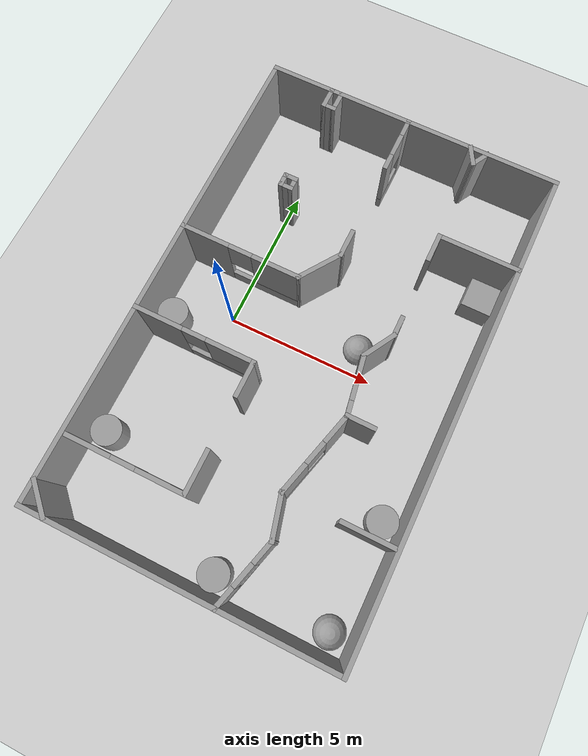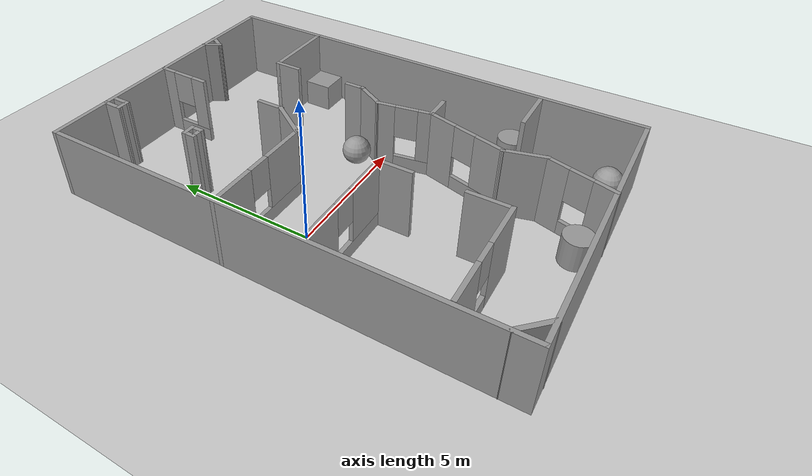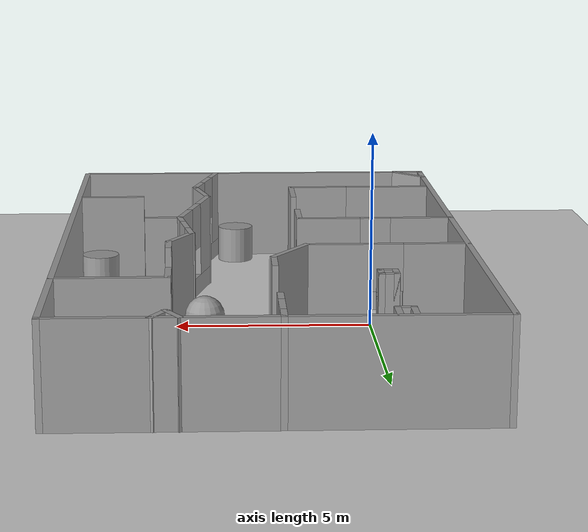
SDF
<sdf version="1.7">
 <world name="default">
  <light name="sun" type="directional">
   <pose>0 0 10 0 -0 0</pose>
   <diffuse>0.8 0.8 0.8 1</diffuse>
   <specular>0.2 0.2 0.2 1</specular>
   <attenuation>
    <range>1000</range>
    <constant>0.9</constant>
    <linear>0.01</linear>
    <quadratic>0.001</quadratic>
   </attenuation>
   <direction>-0.5 0.1 -0.9</direction>
   <spot><inner_angle>0</inner_angle><outer_angle>0</outer_angle><falloff>0</falloff></spot>
  </light>
  <model name="ground_plane">
   <static>1</static>
   <link name="link">
    <collision name="collision">
     <geometry><plane><normal>0 0 1</normal><size>100 100</size></plane></geometry>
     <surface>
      <contact><collide_bitmask>65535</collide_bitmask></contact>
      <friction><ode><mu>100</mu><mu2>50</mu2></ode></friction>
     </surface>
    </collision>
    <visual name="visual">
     <cast_shadows>0</cast_shadows>
     <geometry><plane><normal>0 0 1</normal><size>100 100</size></plane></geometry>
     <material>
      <script><uri>file://media/materials/scripts/gazebo.material</uri><name>Gazebo/Grey</name></script>
     </material>
    </visual>
   </link>
  </model>
  <gravity>0 0 -9.8</gravity>
  <magnetic_field>6e-06 2.3e-05 -4.2e-05</magnetic_field>
  <atmosphere type="adiabatic"/>
  <physics type="ode">
   <max_step_size>0.001</max_step_size>
   <real_time_factor>1</real_time_factor>
   <real_time_update_rate>1000</real_time_update_rate>
  </physics>
  <scene><ambient>0.4 0.4 0.4 1</ambient><background>0.7 0.7 0.7 1</background><shadows>1</shadows></scene>
  <spherical_coordinates>
   <surface_model>EARTH_WGS84</surface_model>
   <latitude_deg>0</latitude_deg>
   <longitude_deg>0</longitude_deg>
   <elevation>0</elevation>
   <heading_deg>0</heading_deg>
  </spherical_coordinates>
  <model name="nano_demo">
   <pose>2.74513 -0.021005 0 0 -0 0</pose>
   <link name="Wall_12">
    <collision name="Wall_12_Collision">
     <geometry><box><size>5 0.15 2.5</size></box></geometry>
     <pose>0 0 1.25 0 -0 0</pose>
    </collision>
    <visual name="Wall_12_Visual">
     <pose>0 0 1.25 0 -0 0</pose>
     <geometry><box><size>5 0.15 2.5</size></box></geometry>
     <material>
      <script><uri>file://media/materials/scripts/gazebo.material</uri><name>Gazebo/Grey</name></script>
      <ambient>1 1 1 1</ambient>
     </material>
     <meta><layer>0</layer></meta>
    </visual>
    <pose>-2.56785 7.99282 0 0 -0 0</pose>
   </link>
   <link name="Wall_14">
    <pose>-0.142845 7.06783 0 0 -0 -1.5708</pose>
    <visual name="Wall_14_Visual_0">
     <pose>-0.683991 0 1.25 0 -0 0</pose>
     <geometry><box><size>0.632019 0.15 2.5</size></box></geometry>
     <material>
      <script><uri>file://media/materials/scripts/gazebo.material</uri><name>Gazebo/Grey</name></script>
      <ambient>1 1 1 1</ambient>
     </material>
     <meta><layer>0</layer></meta>
    </visual>
    <collision name="Wall_14_Collision_0">
     <geometry><box><size>0.632019 0.15 2.5</size></box></geometry>
     <pose>-0.683991 0 1.25 0 -0 0</pose>
    </collision>
    <visual name="Wall_14_Visual_1">
     <pose>0.316009 0 0.25 0 -0 0</pose>
     <geometry><box><size>1.36798 0.15 0.5</size></box></geometry>
     <material>
      <script><uri>file://media/materials/scripts/gazebo.material</uri><name>Gazebo/Grey</name></script>
      <ambient>1 1 1 1</ambient>
     </material>
     <meta><layer>0</layer></meta>
    </visual>
    <collision name="Wall_14_Collision_1">
     <geometry><box><size>1.36798 0.15 0.5</size></box></geometry>
     <pose>0.316009 0 0.25 0 -0 0</pose>
    </collision>
    <visual name="Wall_14_Visual_2">
     <pose>0.716009 0 1.5 0 -0 0</pose>
     <geometry><box><size>0.567981 0.15 2</size></box></geometry>
     <material>
      <script><uri>file://media/materials/scripts/gazebo.material</uri><name>Gazebo/Grey</name></script>
      <ambient>1 1 1 1</ambient>
     </material>
     <meta><layer>0</layer></meta>
    </visual>
    <collision name="Wall_14_Collision_2">
     <geometry><box><size>0.567981 0.15 2</size></box></geometry>
     <pose>0.716009 0 1.5 0 -0 0</pose>
    </collision>
    <visual name="Wall_14_Visual_3">
     <pose>0.032019 0 1.9 0 -0 0</pose>
     <geometry><box><size>0.8 0.15 1.2</size></box></geometry>
     <material>
      <script><uri>file://media/materials/scripts/gazebo.material</uri><name>Gazebo/Grey</name></script>
      <ambient>1 1 1 1</ambient>
     </material>
     <meta><layer>0</layer></meta>
    </visual>
    <collision name="Wall_14_Collision_3">
     <geometry><box><size>0.8 0.15 1.2</size></box></geometry>
     <pose>0.032019 0 1.9 0 -0 0</pose>
    </collision>
   </link>
   <link name="Wall_16">
    <collision name="Wall_16_Collision">
     <geometry><box><size>1 0.15 2.5</size></box></geometry>
     <pose>0 0 1.25 0 -0 0</pose>
    </collision>
    <visual name="Wall_16_Visual">
     <pose>0 0 1.25 0 -0 0</pose>
     <geometry><box><size>1 0.15 2.5</size></box></geometry>
     <material>
      <script><uri>file://media/materials/scripts/gazebo.material</uri><name>Gazebo/Grey</name></script>
      <ambient>1 1 1 1</ambient>
     </material>
     <meta><layer>0</layer></meta>
    </visual>
    <pose>-0.136862 3.16166 0 0 -0 -1.5708</pose>
   </link>
   <link name="Wall_18">
    <collision name="Wall_18_Collision">
     <geometry><box><size>1.65991 0.15 2.5</size></box></geometry>
     <pose>0 0 1.25 0 -0 0</pose>
    </collision>
    <visual name="Wall_18_Visual">
     <pose>0 0 1.25 0 -0 0</pose>
     <geometry><box><size>1.65991 0.15 2.5</size></box></geometry>
     <material>
      <script><uri>file://media/materials/scripts/gazebo.material</uri><name>Gazebo/Grey</name></script>
      <ambient>1 1 1 1</ambient>
     </material>
     <meta><layer>0</layer></meta>
    </visual>
    <pose>-0.564853 2.11474 0 0 -0 -2.17355</pose>
   </link>
   <link name="Wall_2">
    <collision name="Wall_2_Collision">
     <geometry><box><size>16.15 0.15 2.5</size></box></geometry>
     <pose>0 0 1.25 0 -0 0</pose>
    </collision>
    <visual name="Wall_2_Visual">
     <pose>0 0 1.25 0 -0 0</pose>
     <geometry><box><size>16.15 0.15 2.5</size></box></geometry>
     <material>
      <script><uri>file://media/materials/scripts/gazebo.material</uri><name>Gazebo/Grey</name></script>
      <ambient>1 1 1 1</ambient>
     </material>
     <meta><layer>0</layer></meta>
    </visual>
    <pose>-4.99284 -0.007175 0 0 -0 -1.5708</pose>
   </link>
   <link name="Wall_20">
    <collision name="Wall_20_Collision">
     <geometry><box><size>5.3 0.15 2.5</size></box></geometry>
     <pose>0 0 1.25 0 -0 0</pose>
    </collision>
    <visual name="Wall_20_Visual">
     <pose>0 0 1.25 0 -0 0</pose>
     <geometry><box><size>5.3 0.15 2.5</size></box></geometry>
     <material>
      <script><uri>file://media/materials/scripts/gazebo.material</uri><name>Gazebo/Grey</name></script>
      <ambient>1 1 1 1</ambient>
     </material>
     <meta><layer>0</layer></meta>
    </visual>
    <pose>2.43216 7.99282 0 0 -0 0</pose>
   </link>
   <link name="Wall_22">
    <collision name="Wall_22_Collision">
     <geometry><box><size>3.5 0.15 2.5</size></box></geometry>
     <pose>0 0 1.25 0 -0 0</pose>
    </collision>
    <visual name="Wall_22_Visual">
     <pose>0 0 1.25 0 -0 0</pose>
     <geometry><box><size>3.5 0.15 2.5</size></box></geometry>
     <material>
      <script><uri>file://media/materials/scripts/gazebo.material</uri><name>Gazebo/Grey</name></script>
      <ambient>1 1 1 1</ambient>
     </material>
     <meta><layer>0</layer></meta>
    </visual>
    <pose>5.00716 6.31783 0 0 -0 -1.5708</pose>
   </link>
   <link name="Wall_23">
    <collision name="Wall_23_Collision">
     <geometry><box><size>2.8 0.15 2.5</size></box></geometry>
     <pose>0 0 1.25 0 -0 0</pose>
    </collision>
    <visual name="Wall_23_Visual">
     <pose>0 0 1.25 0 -0 0</pose>
     <geometry><box><size>2.8 0.15 2.5</size></box></geometry>
     <material>
      <script><uri>file://media/materials/scripts/gazebo.material</uri><name>Gazebo/Grey</name></script>
      <ambient>1 1 1 1</ambient>
     </material>
     <meta><layer>0</layer></meta>
    </visual>
    <pose>3.68216 4.64283 0 0 -0 3.14159</pose>
   </link>
   <link name="Wall_29">
    <collision name="Wall_29_Collision">
     <geometry><box><size>1 0.15 2.5</size></box></geometry>
     <pose>0 0 1.25 0 -0 0</pose>
    </collision>
    <visual name="Wall_29_Visual">
     <pose>0 0 1.25 0 -0 0</pose>
     <geometry><box><size>1 0.15 2.5</size></box></geometry>
     <material>
      <script><uri>file://media/materials/scripts/gazebo.material</uri><name>Gazebo/Grey</name></script>
      <ambient>1 1 1 1</ambient>
     </material>
     <meta><layer>0</layer></meta>
    </visual>
    <pose>2.35716 4.21783 0 0 -0 -1.5708</pose>
   </link>
   <link name="Wall_31">
    <collision name="Wall_31_Collision">
     <geometry><box><size>12.8 0.15 2.5</size></box></geometry>
     <pose>0 0 1.25 0 -0 0</pose>
    </collision>
    <visual name="Wall_31_Visual">
     <pose>0 0 1.25 0 -0 0</pose>
     <geometry><box><size>12.8 0.15 2.5</size></box></geometry>
     <material>
      <script><uri>file://media/materials/scripts/gazebo.material</uri><name>Gazebo/Grey</name></script>
      <ambient>1 1 1 1</ambient>
     </material>
     <meta><layer>0</layer></meta>
    </visual>
    <pose>5.00716 -1.68217 0 0 -0 -1.5708</pose>
   </link>
   <link name="Wall_35">
    <collision name="Wall_35_Collision">
     <geometry><box><size>0.75 0.15 2.5</size></box></geometry>
     <pose>0 0 1.25 0 -0 0</pose>
    </collision>
    <visual name="Wall_35_Visual">
     <pose>0 0 1.25 0 -0 0</pose>
     <geometry><box><size>0.75 0.15 2.5</size></box></geometry>
     <material>
      <script><uri>file://media/materials/scripts/gazebo.material</uri><name>Gazebo/Grey</name></script>
      <ambient>1 1 1 1</ambient>
     </material>
     <meta><layer>0</layer></meta>
    </visual>
    <pose>2.39925 1.36893 0 0 -0 -1.5708</pose>
   </link>
   <link name="Wall_36">
    <collision name="Wall_36_Collision">
     <geometry><box><size>1.25 0.15 2.5</size></box></geometry>
     <pose>0 0 1.25 0 -0 0</pose>
    </collision>
    <visual name="Wall_36_Visual">
     <pose>0 0 1.25 0 -0 0</pose>
     <geometry><box><size>1.25 0.15 2.5</size></box></geometry>
     <material>
      <script><uri>file://media/materials/scripts/gazebo.material</uri><name>Gazebo/Grey</name></script>
      <ambient>1 1 1 1</ambient>
     </material>
     <meta><layer>0</layer></meta>
    </visual>
    <pose>2.12425 0.592618 0 0 -0 -2.0944</pose>
   </link>
   <link name="Wall_41">
    <collision name="Wall_41_Collision">
     <geometry><box><size>1.25 0.15 2.5</size></box></geometry>
     <pose>0 0 1.25 0 -0 0</pose>
    </collision>
    <visual name="Wall_41_Visual">
     <pose>0 0 1.25 0 -0 0</pose>
     <geometry><box><size>1.25 0.15 2.5</size></box></geometry>
     <material>
      <script><uri>file://media/materials/scripts/gazebo.material</uri><name>Gazebo/Grey</name></script>
      <ambient>1 1 1 1</ambient>
     </material>
     <meta><layer>0</layer></meta>
    </visual>
    <pose>-0.992845 -2.05717 0 0 -0 -1.5708</pose>
   </link>
   <link name="Wall_43">
    <collision name="Wall_43_Collision">
     <geometry><box><size>1.5 0.15 2.5</size></box></geometry>
     <pose>0 0 1.25 0 -0 0</pose>
    </collision>
    <visual name="Wall_43_Visual">
     <pose>0 0 1.25 0 -0 0</pose>
     <geometry><box><size>1.5 0.15 2.5</size></box></geometry>
     <material>
      <script><uri>file://media/materials/scripts/gazebo.material</uri><name>Gazebo/Grey</name></script>
      <ambient>1 1 1 1</ambient>
     </material>
     <meta><layer>0</layer></meta>
    </visual>
    <pose>-0.981755 -5.0631 0 0 -0 -1.5708</pose>
   </link>
   <link name="Wall_46">
    <pose>-2.90676 -5.7381 0 0 -0 3.14159</pose>
    <visual name="Wall_46_Visual_0">
     <pose>-1.16576 0 1.25 0 -0 0</pose>
     <geometry><box><size>1.66847 0.15 2.5</size></box></geometry>
     <material>
      <script><uri>file://media/materials/scripts/gazebo.material</uri><name>Gazebo/Grey</name></script>
      <ambient>1 1 1 1</ambient>
     </material>
     <meta><layer>0</layer></meta>
    </visual>
    <collision name="Wall_46_Collision_0">
     <geometry><box><size>1.66847 0.15 2.5</size></box></geometry>
     <pose>-1.16576 0 1.25 0 -0 0</pose>
    </collision>
    <visual name="Wall_46_Visual_1">
     <pose>0.834236 0 0.25 0 -0 0</pose>
     <geometry><box><size>2.33153 0.15 0.5</size></box></geometry>
     <material>
      <script><uri>file://media/materials/scripts/gazebo.material</uri><name>Gazebo/Grey</name></script>
      <ambient>1 1 1 1</ambient>
     </material>
     <meta><layer>0</layer></meta>
    </visual>
    <collision name="Wall_46_Collision_1">
     <geometry><box><size>2.33153 0.15 0.5</size></box></geometry>
     <pose>0.834236 0 0.25 0 -0 0</pose>
    </collision>
    <visual name="Wall_46_Visual_2">
     <pose>1.23424 0 1.5 0 -0 0</pose>
     <geometry><box><size>1.53153 0.15 2</size></box></geometry>
     <material>
      <script><uri>file://media/materials/scripts/gazebo.material</uri><name>Gazebo/Grey</name></script>
      <ambient>1 1 1 1</ambient>
     </material>
     <meta><layer>0</layer></meta>
    </visual>
    <collision name="Wall_46_Collision_2">
     <geometry><box><size>1.53153 0.15 2</size></box></geometry>
     <pose>1.23424 0 1.5 0 -0 0</pose>
    </collision>
    <visual name="Wall_46_Visual_3">
     <pose>0.068471 0 1.9 0 -0 0</pose>
     <geometry><box><size>0.8 0.15 1.2</size></box></geometry>
     <material>
      <script><uri>file://media/materials/scripts/gazebo.material</uri><name>Gazebo/Grey</name></script>
      <ambient>1 1 1 1</ambient>
     </material>
     <meta><layer>0</layer></meta>
    </visual>
    <collision name="Wall_46_Collision_3">
     <geometry><box><size>0.8 0.15 1.2</size></box></geometry>
     <pose>0.068471 0 1.9 0 -0 0</pose>
    </collision>
   </link>
   <link name="Wall_48">
    <collision name="Wall_48_Collision">
     <geometry><box><size>10.15 0.15 2.5</size></box></geometry>
     <pose>0 0 1.25 0 -0 0</pose>
    </collision>
    <visual name="Wall_48_Visual">
     <pose>0 0 1.25 0 -0 0</pose>
     <geometry><box><size>10.15 0.15 2.5</size></box></geometry>
     <material>
      <script><uri>file://media/materials/scripts/gazebo.material</uri><name>Gazebo/Grey</name></script>
      <ambient>1 1 1 1</ambient>
     </material>
     <meta><layer>0</layer></meta>
    </visual>
    <pose>0.007155 -8.00718 0 0 -0 0</pose>
   </link>
   <link name="Wall_5">
    <pose>-2.99284 1.49283 0 0 -0 0</pose>
    <visual name="Wall_5_Visual_0">
     <pose>-1.2375 0 1.25 0 -0 0</pose>
     <geometry><box><size>1.675 0.15 2.5</size></box></geometry>
     <material>
      <script><uri>file://media/materials/scripts/gazebo.material</uri><name>Gazebo/Grey</name></script>
      <ambient>1 1 1 1</ambient>
     </material>
     <meta><layer>0</layer></meta>
    </visual>
    <collision name="Wall_5_Collision_0">
     <geometry><box><size>1.675 0.15 2.5</size></box></geometry>
     <pose>-1.2375 0 1.25 0 -0 0</pose>
    </collision>
    <visual name="Wall_5_Visual_1">
     <pose>0.8375 0 0.25 0 -0 0</pose>
     <geometry><box><size>2.475 0.15 0.5</size></box></geometry>
     <material>
      <script><uri>file://media/materials/scripts/gazebo.material</uri><name>Gazebo/Grey</name></script>
      <ambient>1 1 1 1</ambient>
     </material>
     <meta><layer>0</layer></meta>
    </visual>
    <collision name="Wall_5_Collision_1">
     <geometry><box><size>2.475 0.15 0.5</size></box></geometry>
     <pose>0.8375 0 0.25 0 -0 0</pose>
    </collision>
    <visual name="Wall_5_Visual_2">
     <pose>1.2375 0 1.5 0 -0 0</pose>
     <geometry><box><size>1.675 0.15 2</size></box></geometry>
     <material>
      <script><uri>file://media/materials/scripts/gazebo.material</uri><name>Gazebo/Grey</name></script>
      <ambient>1 1 1 1</ambient>
     </material>
     <meta><layer>0</layer></meta>
    </visual>
    <collision name="Wall_5_Collision_2">
     <geometry><box><size>1.675 0.15 2</size></box></geometry>
     <pose>1.2375 0 1.5 0 -0 0</pose>
    </collision>
    <visual name="Wall_5_Visual_3">
     <pose>0 0 1.9 0 -0 0</pose>
     <geometry><box><size>0.8 0.15 1.2</size></box></geometry>
     <material>
      <script><uri>file://media/materials/scripts/gazebo.material</uri><name>Gazebo/Grey</name></script>
      <ambient>1 1 1 1</ambient>
     </material>
     <meta><layer>0</layer></meta>
    </visual>
    <collision name="Wall_5_Collision_3">
     <geometry><box><size>0.8 0.15 1.2</size></box></geometry>
     <pose>0 0 1.9 0 -0 0</pose>
    </collision>
   </link>
   <link name="Wall_52">
    <pose>2.0071 -0.810513 0 0 -0 -1.4021</pose>
    <visual name="Wall_52_Visual_0">
     <pose>-0.669959 0 1.25 0 -0 0</pose>
     <geometry><box><size>0.690408 0.15 2.5</size></box></geometry>
     <material>
      <script><uri>file://media/materials/scripts/gazebo.material</uri><name>Gazebo/Grey</name></script>
      <ambient>1 1 1 1</ambient>
     </material>
     <meta><layer>0</layer></meta>
    </visual>
    <collision name="Wall_52_Collision_0">
     <geometry><box><size>0.690408 0.15 2.5</size></box></geometry>
     <pose>-0.669959 0 1.25 0 -0 0</pose>
    </collision>
    <visual name="Wall_52_Visual_1">
     <pose>0.345204 0 0.25 0 -0 0</pose>
     <geometry><box><size>1.33992 0.15 0.5</size></box></geometry>
     <material>
      <script><uri>file://media/materials/scripts/gazebo.material</uri><name>Gazebo/Grey</name></script>
      <ambient>1 1 1 1</ambient>
     </material>
     <meta><layer>0</layer></meta>
    </visual>
    <collision name="Wall_52_Collision_1">
     <geometry><box><size>1.33992 0.15 0.5</size></box></geometry>
     <pose>0.345204 0 0.25 0 -0 0</pose>
    </collision>
    <visual name="Wall_52_Visual_2">
     <pose>0.745204 0 1.5 0 -0 0</pose>
     <geometry><box><size>0.539918 0.15 2</size></box></geometry>
     <material>
      <script><uri>file://media/materials/scripts/gazebo.material</uri><name>Gazebo/Grey</name></script>
      <ambient>1 1 1 1</ambient>
     </material>
     <meta><layer>0</layer></meta>
    </visual>
    <collision name="Wall_52_Collision_2">
     <geometry><box><size>0.539918 0.15 2</size></box></geometry>
     <pose>0.745204 0 1.5 0 -0 0</pose>
    </collision>
    <visual name="Wall_52_Visual_3">
     <pose>0.075245 0 1.9 0 -0 0</pose>
     <geometry><box><size>0.8 0.15 1.2</size></box></geometry>
     <material>
      <script><uri>file://media/materials/scripts/gazebo.material</uri><name>Gazebo/Grey</name></script>
      <ambient>1 1 1 1</ambient>
     </material>
     <meta><layer>0</layer></meta>
    </visual>
    <collision name="Wall_52_Collision_3">
     <geometry><box><size>0.8 0.15 1.2</size></box></geometry>
     <pose>0.075245 0 1.9 0 -0 0</pose>
    </collision>
   </link>
   <link name="Wall_53">
    <pose>1.79613 -3.11377 0 0 -0 -1.8326</pose>
    <visual name="Wall_53_Visual_0">
     <pose>-0.956577 0 1.25 0 -0 0</pose>
     <geometry><box><size>1.08685 0.15 2.5</size></box></geometry>
     <material>
      <script><uri>file://media/materials/scripts/gazebo.material</uri><name>Gazebo/Grey</name></script>
      <ambient>1 1 1 1</ambient>
     </material>
     <meta><layer>0</layer></meta>
    </visual>
    <collision name="Wall_53_Collision_0">
     <geometry><box><size>1.08685 0.15 2.5</size></box></geometry>
     <pose>-0.956577 0 1.25 0 -0 0</pose>
    </collision>
    <visual name="Wall_53_Visual_1">
     <pose>0.543423 0 0.25 0 -0 0</pose>
     <geometry><box><size>1.91315 0.15 0.5</size></box></geometry>
     <material>
      <script><uri>file://media/materials/scripts/gazebo.material</uri><name>Gazebo/Grey</name></script>
      <ambient>1 1 1 1</ambient>
     </material>
     <meta><layer>0</layer></meta>
    </visual>
    <collision name="Wall_53_Collision_1">
     <geometry><box><size>1.91315 0.15 0.5</size></box></geometry>
     <pose>0.543423 0 0.25 0 -0 0</pose>
    </collision>
    <visual name="Wall_53_Visual_2">
     <pose>0.943423 0 1.5 0 -0 0</pose>
     <geometry><box><size>1.11315 0.15 2</size></box></geometry>
     <material>
      <script><uri>file://media/materials/scripts/gazebo.material</uri><name>Gazebo/Grey</name></script>
      <ambient>1 1 1 1</ambient>
     </material>
     <meta><layer>0</layer></meta>
    </visual>
    <collision name="Wall_53_Collision_2">
     <geometry><box><size>1.11315 0.15 2</size></box></geometry>
     <pose>0.943423 0 1.5 0 -0 0</pose>
    </collision>
    <visual name="Wall_53_Visual_3">
     <pose>-0.013154 0 1.9 0 -0 0</pose>
     <geometry><box><size>0.8 0.15 1.2</size></box></geometry>
     <material>
      <script><uri>file://media/materials/scripts/gazebo.material</uri><name>Gazebo/Grey</name></script>
      <ambient>1 1 1 1</ambient>
     </material>
     <meta><layer>0</layer></meta>
    </visual>
    <collision name="Wall_53_Collision_3">
     <geometry><box><size>0.8 0.15 1.2</size></box></geometry>
     <pose>-0.013154 0 1.9 0 -0 0</pose>
    </collision>
   </link>
   <link name="Wall_54">
    <collision name="Wall_54_Collision">
     <geometry><box><size>1.5 0.15 2.5</size></box></geometry>
     <pose>0 0 1.25 0 -0 0</pose>
    </collision>
    <visual name="Wall_54_Visual">
     <pose>0 0 1.25 0 -0 0</pose>
     <geometry><box><size>1.5 0.15 2.5</size></box></geometry>
     <material>
      <script><uri>file://media/materials/scripts/gazebo.material</uri><name>Gazebo/Grey</name></script>
      <ambient>1 1 1 1</ambient>
     </material>
     <meta><layer>0</layer></meta>
    </visual>
    <pose>1.60224 -5.1422 0 0 -0 -1.30868</pose>
   </link>
   <link name="Wall_55">
    <pose>1.47266 -6.90067 0 0 -0 -1.83934</pose>
    <visual name="Wall_55_Visual_0">
     <pose>-0.796386 0 1.25 0 -0 0</pose>
     <geometry><box><size>0.852496 0.15 2.5</size></box></geometry>
     <material>
      <script><uri>file://media/materials/scripts/gazebo.material</uri><name>Gazebo/Grey</name></script>
      <ambient>1 1 1 1</ambient>
     </material>
     <meta><layer>0</layer></meta>
    </visual>
    <collision name="Wall_55_Collision_0">
     <geometry><box><size>0.852496 0.15 2.5</size></box></geometry>
     <pose>-0.796386 0 1.25 0 -0 0</pose>
    </collision>
    <visual name="Wall_55_Visual_1">
     <pose>0.426248 0 0.25 0 -0 0</pose>
     <geometry><box><size>1.59277 0.15 0.5</size></box></geometry>
     <material>
      <script><uri>file://media/materials/scripts/gazebo.material</uri><name>Gazebo/Grey</name></script>
      <ambient>1 1 1 1</ambient>
     </material>
     <meta><layer>0</layer></meta>
    </visual>
    <collision name="Wall_55_Collision_1">
     <geometry><box><size>1.59277 0.15 0.5</size></box></geometry>
     <pose>0.426248 0 0.25 0 -0 0</pose>
    </collision>
    <visual name="Wall_55_Visual_2">
     <pose>0.826248 0 1.5 0 -0 0</pose>
     <geometry><box><size>0.792771 0.15 2</size></box></geometry>
     <material>
      <script><uri>file://media/materials/scripts/gazebo.material</uri><name>Gazebo/Grey</name></script>
      <ambient>1 1 1 1</ambient>
     </material>
     <meta><layer>0</layer></meta>
    </visual>
    <collision name="Wall_55_Collision_2">
     <geometry><box><size>0.792771 0.15 2</size></box></geometry>
     <pose>0.826248 0 1.5 0 -0 0</pose>
    </collision>
    <visual name="Wall_55_Visual_3">
     <pose>0.029862 0 1.9 0 -0 0</pose>
     <geometry><box><size>0.8 0.15 1.2</size></box></geometry>
     <material>
      <script><uri>file://media/materials/scripts/gazebo.material</uri><name>Gazebo/Grey</name></script>
      <ambient>1 1 1 1</ambient>
     </material>
     <meta><layer>0</layer></meta>
    </visual>
    <collision name="Wall_55_Collision_3">
     <geometry><box><size>0.8 0.15 1.2</size></box></geometry>
     <pose>0.029862 0 1.9 0 -0 0</pose>
    </collision>
   </link>
   <link name="Wall_57">
    <collision name="Wall_57_Collision">
     <geometry><box><size>1.25 0.15 2.5</size></box></geometry>
     <pose>0 0 1.25 0 -0 0</pose>
    </collision>
    <visual name="Wall_57_Visual">
     <pose>0 0 1.25 0 -0 0</pose>
     <geometry><box><size>1.25 0.15 2.5</size></box></geometry>
     <material>
      <script><uri>file://media/materials/scripts/gazebo.material</uri><name>Gazebo/Grey</name></script>
      <ambient>1 1 1 1</ambient>
     </material>
     <meta><layer>0</layer></meta>
    </visual>
    <pose>-4.58718 -7.60573 0 0 -0 -0.785398</pose>
   </link>
   <link name="Wall_62">
    <collision name="Wall_62_Collision">
     <geometry><box><size>1.75 0.15 2.5</size></box></geometry>
     <pose>0 0 1.25 0 -0 0</pose>
    </collision>
    <visual name="Wall_62_Visual">
     <pose>0 0 1.25 0 -0 0</pose>
     <geometry><box><size>1.75 0.15 2.5</size></box></geometry>
     <material>
      <script><uri>file://media/materials/scripts/gazebo.material</uri><name>Gazebo/Grey</name></script>
      <ambient>1 1 1 1</ambient>
     </material>
     <meta><layer>0</layer></meta>
    </visual>
    <pose>4.07732 -4.49022 0 0 -0 0</pose>
   </link>
   <link name="Wall_67">
    <collision name="Wall_67_Collision">
     <geometry><box><size>1 0.15 2.5</size></box></geometry>
     <pose>0 0 1.25 0 -0 0</pose>
    </collision>
    <visual name="Wall_67_Visual">
     <pose>0 0 1.25 0 -0 0</pose>
     <geometry><box><size>1 0.15 2.5</size></box></geometry>
     <material>
      <script><uri>file://media/materials/scripts/gazebo.material</uri><name>Gazebo/Grey</name></script>
      <ambient>1 1 1 1</ambient>
     </material>
     <meta><layer>0</layer></meta>
    </visual>
    <pose>2.58995 -1.73733 0 0 -0 0</pose>
   </link>
   <link name="Wall_7">
    <pose>-2.99284 -1.50717 0 0 -0 0</pose>
    <visual name="Wall_7_Visual_0">
     <pose>-1.2375 0 1.25 0 -0 0</pose>
     <geometry><box><size>1.675 0.15 2.5</size></box></geometry>
     <material>
      <script><uri>file://media/materials/scripts/gazebo.material</uri><name>Gazebo/Grey</name></script>
      <ambient>1 1 1 1</ambient>
     </material>
     <meta><layer>0</layer></meta>
    </visual>
    <collision name="Wall_7_Collision_0">
     <geometry><box><size>1.675 0.15 2.5</size></box></geometry>
     <pose>-1.2375 0 1.25 0 -0 0</pose>
    </collision>
    <visual name="Wall_7_Visual_1">
     <pose>0.8375 0 0.25 0 -0 0</pose>
     <geometry><box><size>2.475 0.15 0.5</size></box></geometry>
     <material>
      <script><uri>file://media/materials/scripts/gazebo.material</uri><name>Gazebo/Grey</name></script>
      <ambient>1 1 1 1</ambient>
     </material>
     <meta><layer>0</layer></meta>
    </visual>
    <collision name="Wall_7_Collision_1">
     <geometry><box><size>2.475 0.15 0.5</size></box></geometry>
     <pose>0.8375 0 0.25 0 -0 0</pose>
    </collision>
    <visual name="Wall_7_Visual_2">
     <pose>1.2375 0 1.5 0 -0 0</pose>
     <geometry><box><size>1.675 0.15 2</size></box></geometry>
     <material>
      <script><uri>file://media/materials/scripts/gazebo.material</uri><name>Gazebo/Grey</name></script>
      <ambient>1 1 1 1</ambient>
     </material>
     <meta><layer>0</layer></meta>
    </visual>
    <collision name="Wall_7_Collision_2">
     <geometry><box><size>1.675 0.15 2</size></box></geometry>
     <pose>1.2375 0 1.5 0 -0 0</pose>
    </collision>
    <visual name="Wall_7_Visual_3">
     <pose>0 0 1.9 0 -0 0</pose>
     <geometry><box><size>0.8 0.15 1.2</size></box></geometry>
     <material>
      <script><uri>file://media/materials/scripts/gazebo.material</uri><name>Gazebo/Grey</name></script>
      <ambient>1 1 1 1</ambient>
     </material>
     <meta><layer>0</layer></meta>
    </visual>
    <collision name="Wall_7_Collision_3">
     <geometry><box><size>0.8 0.15 1.2</size></box></geometry>
     <pose>0 0 1.9 0 -0 0</pose>
    </collision>
   </link>
   <link name="Wall_70">
    <collision name="Wall_70_Collision">
     <geometry><box><size>0.5 0.15 2.5</size></box></geometry>
     <pose>0 0 1.25 0 -0 0</pose>
    </collision>
    <visual name="Wall_70_Visual">
     <pose>0 0 1.25 0 -0 0</pose>
     <geometry><box><size>0.5 0.15 2.5</size></box></geometry>
     <material>
      <script><uri>file://media/materials/scripts/gazebo.material</uri><name>Gazebo/Grey</name></script>
      <ambient>1 1 1 1</ambient>
     </material>
     <meta><layer>0</layer></meta>
    </visual>
    <pose>-2.89381 4.29486 0 0 -0 -1.5708</pose>
   </link>
   <link name="Wall_71">
    <collision name="Wall_71_Collision">
     <geometry><box><size>0.5 0.15 2.5</size></box></geometry>
     <pose>0 0 1.25 0 -0 0</pose>
    </collision>
    <visual name="Wall_71_Visual">
     <pose>0 0 1.25 0 -0 0</pose>
     <geometry><box><size>0.5 0.15 2.5</size></box></geometry>
     <material>
      <script><uri>file://media/materials/scripts/gazebo.material</uri><name>Gazebo/Grey</name></script>
      <ambient>1 1 1 1</ambient>
     </material>
     <meta><layer>0</layer></meta>
    </visual>
    <pose>-2.71881 4.11986 0 0 -0 0</pose>
   </link>
   <link name="Wall_72">
    <collision name="Wall_72_Collision">
     <geometry><box><size>0.5 0.15 2.5</size></box></geometry>
     <pose>0 0 1.25 0 -0 0</pose>
    </collision>
    <visual name="Wall_72_Visual">
     <pose>0 0 1.25 0 -0 0</pose>
     <geometry><box><size>0.5 0.15 2.5</size></box></geometry>
     <material>
      <script><uri>file://media/materials/scripts/gazebo.material</uri><name>Gazebo/Grey</name></script>
      <ambient>1 1 1 1</ambient>
     </material>
     <meta><layer>0</layer></meta>
    </visual>
    <pose>-2.54381 4.29486 0 0 -0 1.5708</pose>
   </link>
   <link name="Wall_73">
    <collision name="Wall_73_Collision">
     <geometry><box><size>0.5 0.15 2.5</size></box></geometry>
     <pose>0 0 1.25 0 -0 0</pose>
    </collision>
    <visual name="Wall_73_Visual">
     <pose>0 0 1.25 0 -0 0</pose>
     <geometry><box><size>0.5 0.15 2.5</size></box></geometry>
     <material>
      <script><uri>file://media/materials/scripts/gazebo.material</uri><name>Gazebo/Grey</name></script>
      <ambient>1 1 1 1</ambient>
     </material>
     <meta><layer>0</layer></meta>
    </visual>
    <pose>-2.71881 4.46986 0 0 -0 3.14159</pose>
   </link>
   <link name="Wall_75">
    <collision name="Wall_75_Collision">
     <geometry><box><size>0.75 0.15 2.5</size></box></geometry>
     <pose>0 0 1.25 0 -0 0</pose>
    </collision>
    <visual name="Wall_75_Visual">
     <pose>0 0 1.25 0 -0 0</pose>
     <geometry><box><size>0.75 0.15 2.5</size></box></geometry>
     <material>
      <script><uri>file://media/materials/scripts/gazebo.material</uri><name>Gazebo/Grey</name></script>
      <ambient>1 1 1 1</ambient>
     </material>
     <meta><layer>0</layer></meta>
    </visual>
    <pose>-2.92196 7.68233 0 0 -0 -1.5708</pose>
   </link>
   <link name="Wall_76">
    <collision name="Wall_76_Collision">
     <geometry><box><size>0.5 0.15 2.5</size></box></geometry>
     <pose>0 0 1.25 0 -0 0</pose>
    </collision>
    <visual name="Wall_76_Visual">
     <pose>0 0 1.25 0 -0 0</pose>
     <geometry><box><size>0.5 0.15 2.5</size></box></geometry>
     <material>
      <script><uri>file://media/materials/scripts/gazebo.material</uri><name>Gazebo/Grey</name></script>
      <ambient>1 1 1 1</ambient>
     </material>
     <meta><layer>0</layer></meta>
    </visual>
    <pose>-2.74696 7.38233 0 0 -0 0</pose>
   </link>
   <link name="Wall_77">
    <collision name="Wall_77_Collision">
     <geometry><box><size>0.75 0.15 2.5</size></box></geometry>
     <pose>0 0 1.25 0 -0 0</pose>
    </collision>
    <visual name="Wall_77_Visual">
     <pose>0 0 1.25 0 -0 0</pose>
     <geometry><box><size>0.75 0.15 2.5</size></box></geometry>
     <material>
      <script><uri>file://media/materials/scripts/gazebo.material</uri><name>Gazebo/Grey</name></script>
      <ambient>1 1 1 1</ambient>
     </material>
     <meta><layer>0</layer></meta>
    </visual>
    <pose>-2.57196 7.68233 0 0 -0 1.5708</pose>
   </link>
   <link name="Wall_79">
    <collision name="Wall_79_Collision">
     <geometry><box><size>0.75 0.15 2.5</size></box></geometry>
     <pose>0 0 1.25 0 -0 0</pose>
    </collision>
    <visual name="Wall_79_Visual">
     <pose>0 0 1.25 0 -0 0</pose>
     <geometry><box><size>0.75 0.15 2.5</size></box></geometry>
     <material>
      <script><uri>file://media/materials/scripts/gazebo.material</uri><name>Gazebo/Grey</name></script>
      <ambient>1 1 1 1</ambient>
     </material>
     <meta><layer>0</layer></meta>
    </visual>
    <pose>2.19332 7.73844 0 0 -0 -1.0472</pose>
   </link>
   <link name="Wall_80">
    <collision name="Wall_80_Collision">
     <geometry><box><size>0.75 0.15 2.5</size></box></geometry>
     <pose>0 0 1.25 0 -0 0</pose>
    </collision>
    <visual name="Wall_80_Visual">
     <pose>0 0 1.25 0 -0 0</pose>
     <geometry><box><size>0.75 0.15 2.5</size></box></geometry>
     <material>
      <script><uri>file://media/materials/scripts/gazebo.material</uri><name>Gazebo/Grey</name></script>
      <ambient>1 1 1 1</ambient>
     </material>
     <meta><layer>0</layer></meta>
    </visual>
    <pose>2.49332 7.73844 0 0 -0 1.0472</pose>
   </link>
   <static>1</static>
  </model>
  <model name="unit_cylinder">
   <pose>-1.61638 -5.11874 0.499993 -3e-06 2e-06 0</pose>
   <link name="link">
    <inertial>
     <mass>1</mass>
     <inertia><ixx>0.145833</ixx><ixy>0</ixy><ixz>0</ixz><iyy>0.145833</iyy><iyz>0</iyz><izz>0.125</izz></inertia>
    </inertial>
    <collision name="collision">
     <geometry><cylinder><radius>0.5</radius><length>1</length></cylinder></geometry>
    </collision>
    <visual name="visual">
     <geometry><cylinder><radius>0.5</radius><length>1</length></cylinder></geometry>
     <material>
      <script><name>Gazebo/Grey</name><uri>file://media/materials/scripts/gazebo.material</uri></script>
     </material>
    </visual>
   </link>
  </model>
  <model name="unit_cylinder_0">
   <pose>-1.64269 -0.847652 0.499998 3e-06 -3e-06 0</pose>
   <link name="link">
    <inertial>
     <mass>1</mass>
     <inertia><ixx>0.145833</ixx><ixy>0</ixy><ixz>0</ixz><iyy>0.145833</iyy><iyz>0</iyz><izz>0.125</izz></inertia>
    </inertial>
    <collision name="collision">
     <geometry><cylinder><radius>0.5</radius><length>1</length></cylinder></geometry>
    </collision>
    <visual name="visual">
     <geometry><cylinder><radius>0.5</radius><length>1</length></cylinder></geometry>
     <material>
      <script><name>Gazebo/Grey</name><uri>file://media/materials/scripts/gazebo.material</uri></script>
     </material>
    </visual>
   </link>
  </model>
  <model name="unit_sphere">
   <pose>4.26336 0.744286 0.5 0 -0 0</pose>
   <link name="link">
    <inertial>
     <mass>1</mass>
     <inertia><ixx>0.1</ixx><ixy>0</ixy><ixz>0</ixz><iyy>0.1</iyy><iyz>0</iyz><izz>0.1</izz></inertia>
    </inertial>
    <collision name="collision"><geometry><sphere><radius>0.5</radius></sphere></geometry></collision>
    <visual name="visual">
     <geometry><sphere><radius>0.5</radius></sphere></geometry>
     <material>
      <script><name>Gazebo/Grey</name><uri>file://media/materials/scripts/gazebo.material</uri></script>
     </material>
    </visual>
   </link>
  </model>
  <model name="unit_cylinder_1">
   <pose>3.34223 -7.40474 0.499992 -3e-06 3e-06 0</pose>
   <link name="link">
    <inertial>
     <mass>1</mass>
     <inertia><ixx>0.145833</ixx><ixy>0</ixy><ixz>0</ixz><iyy>0.145833</iyy><iyz>0</iyz><izz>0.125</izz></inertia>
    </inertial>
    <collision name="collision">
     <geometry><cylinder><radius>0.5</radius><length>1</length></cylinder></geometry>
    </collision>
    <visual name="visual">
     <geometry><cylinder><radius>0.5</radius><length>1</length></cylinder></geometry>
     <material>
      <script><name>Gazebo/Grey</name><uri>file://media/materials/scripts/gazebo.material</uri></script>
     </material>
    </visual>
   </link>
  </model>
  <model name="unit_sphere_0">
   <pose>7.07123 -7.36839 0.5 0 -0 0</pose>
   <link name="link">
    <inertial>
     <mass>1</mass>
     <inertia><ixx>0.1</ixx><ixy>0</ixy><ixz>0</ixz><iyy>0.1</iyy><iyz>0</iyz><izz>0.1</izz></inertia>
    </inertial>
    <collision name="collision"><geometry><sphere><radius>0.5</radius></sphere></geometry></collision>
    <visual name="visual">
     <geometry><sphere><radius>0.5</radius></sphere></geometry>
     <material>
      <script><name>Gazebo/Grey</name><uri>file://media/materials/scripts/gazebo.material</uri></script>
     </material>
    </visual>
   </link>
  </model>
  <model name="unit_cylinder_2">
   <pose>7.15153 -3.90197 0.499998 3e-06 -4e-06 0</pose>
   <link name="link">
    <inertial>
     <mass>1</mass>
     <inertia><ixx>0.145833</ixx><ixy>0</ixy><ixz>0</ixz><iyy>0.145833</iyy><iyz>0</iyz><izz>0.125</izz></inertia>
    </inertial>
    <collision name="collision">
     <geometry><cylinder><radius>0.5</radius><length>1</length></cylinder></geometry>
    </collision>
    <visual name="visual">
     <geometry><cylinder><radius>0.5</radius><length>1</length></cylinder></geometry>
     <material>
      <script><name>Gazebo/Grey</name><uri>file://media/materials/scripts/gazebo.material</uri></script>
     </material>
    </visual>
   </link>
  </model>
  <model name="unit_box">
   <pose>7.1393 3.98407 0.5 0 -0 0</pose>
   <link name="link">
    <inertial>
     <mass>1</mass>
     <inertia>
      <ixx>0.166667</ixx>
      <ixy>0</ixy>
      <ixz>0</ixz>
      <iyy>0.166667</iyy>
      <iyz>0</iyz>
      <izz>0.166667</izz>
     </inertia>
    </inertial>
    <collision name="collision"><geometry><box><size>1 1 1</size></box></geometry></collision>
    <visual name="visual">
     <geometry><box><size>1 1 1</size></box></geometry>
     <material>
      <script><name>Gazebo/Grey</name><uri>file://media/materials/scripts/gazebo.material</uri></script>
     </material>
    </visual>
   </link>
  </model>
 </world>
</sdf>
